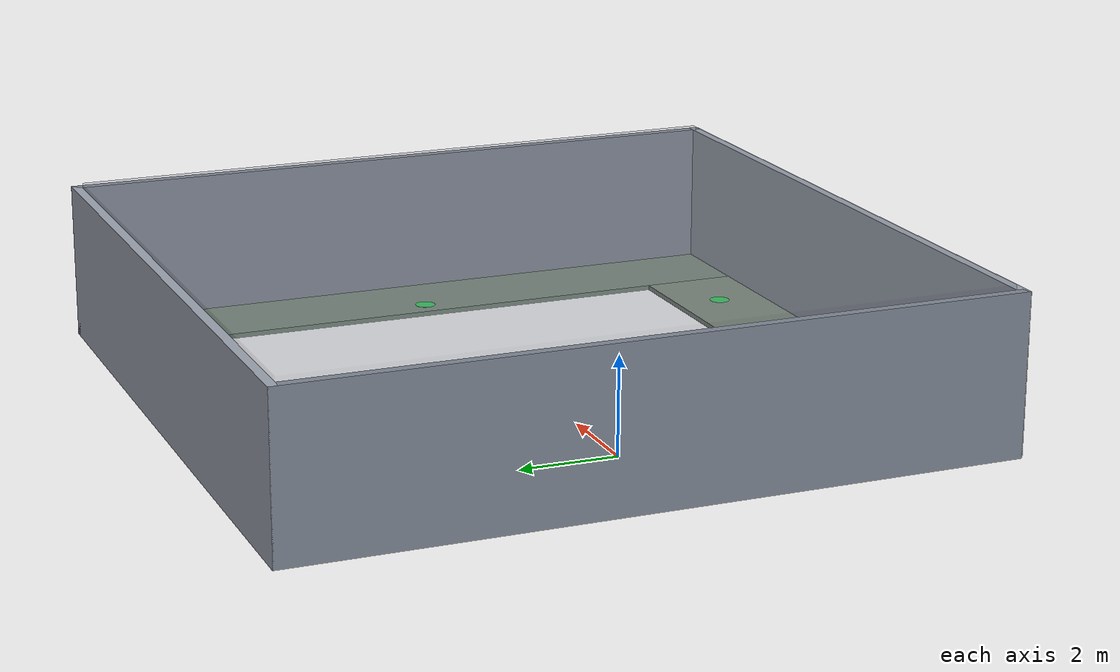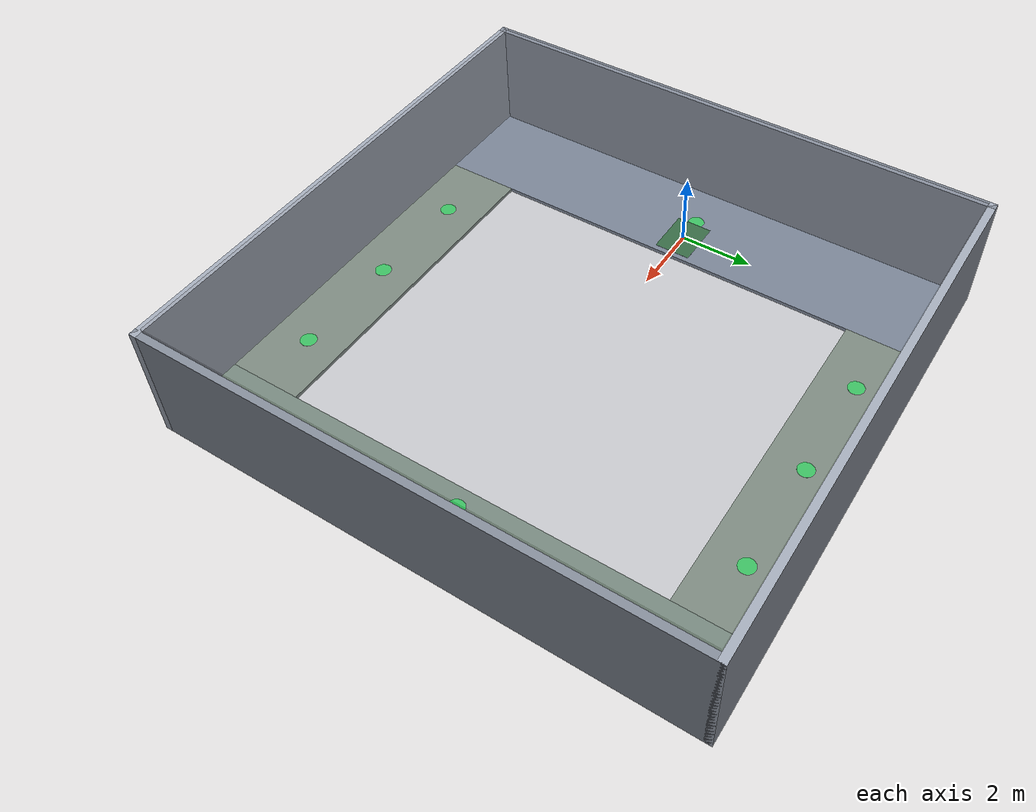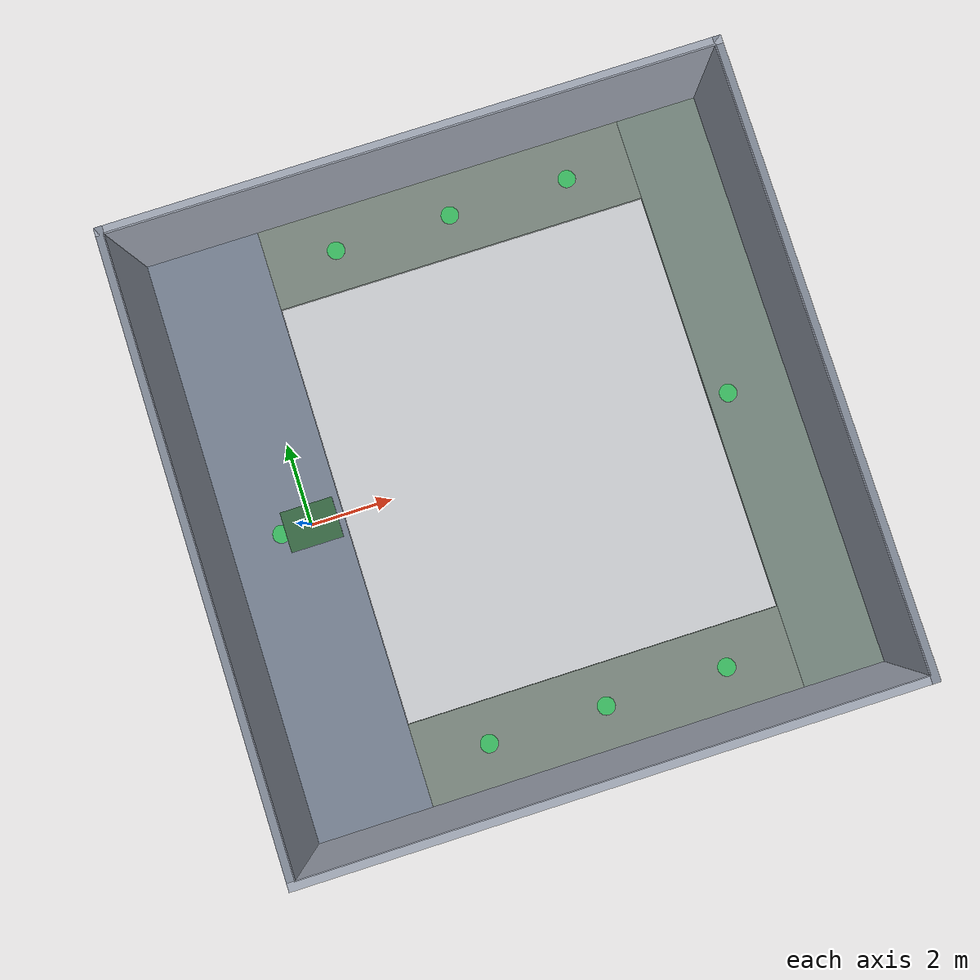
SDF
<sdf version="1.9">
 <world name="combined_rough_section">
  <physics name="2ms_training" type="ignored">
   <max_step_size>0.002</max_step_size>
   <real_time_factor>1.0</real_time_factor>
  </physics>
  <plugin filename="gz-sim-physics-system" name="gz::sim::systems::Physics"/>
  <plugin filename="gz-sim-user-commands-system" name="gz::sim::systems::UserCommands"/>
  <plugin filename="gz-sim-scene-broadcaster-system" name="gz::sim::systems::SceneBroadcaster"/>
  <gravity>0 0 -9.80665</gravity>
  <scene>
   <ambient>0.28 0.28 0.30 1</ambient>
   <background>0.08 0.09 0.12 1</background>
   <shadows>true</shadows>
   <grid>false</grid>
  </scene>
  <light name="lamp_01" type="point">
   <pose>2 0 2.7 0 0 0</pose>
   <cast_shadows>false</cast_shadows>
   <diffuse>0.95 0.92 0.84 1</diffuse>
   <specular>0.15 0.15 0.15 1</specular>
   <attenuation>
    <range>11</range>
    <constant>0.4</constant>
    <linear>0.08</linear>
    <quadratic>0.01</quadratic>
   </attenuation>
  </light>
  <light name="lamp_02" type="point">
   <pose>10 0 2.7 0 0 0</pose>
   <cast_shadows>false</cast_shadows>
   <diffuse>0.95 0.92 0.84 1</diffuse>
   <specular>0.15 0.15 0.15 1</specular>
   <attenuation>
    <range>11</range>
    <constant>0.4</constant>
    <linear>0.08</linear>
    <quadratic>0.01</quadratic>
   </attenuation>
  </light>
  <model name="enclosed_hall">
   <static>true</static>
   <link name="structure">
    <collision name="left_wall_collision">
     <pose>5 7.3 1.35 0 0 0</pose>
     <geometry><box><size>14.4 0.2 3.3</size></box></geometry>
    </collision>
    <visual name="left_wall_visual">
     <pose>5 7.3 1.35 0 0 0</pose>
     <geometry><box><size>14.4 0.2 3.3</size></box></geometry>
     <material><ambient>0.52 0.55 0.60 1</ambient><diffuse>0.62 0.65 0.70 1</diffuse></material>
    </visual>
    <collision name="right_wall_collision">
     <pose>5 -7.3 1.35 0 0 0</pose>
     <geometry><box><size>14.4 0.2 3.3</size></box></geometry>
    </collision>
    <visual name="right_wall_visual">
     <pose>5 -7.3 1.35 0 0 0</pose>
     <geometry><box><size>14.4 0.2 3.3</size></box></geometry>
     <material><ambient>0.52 0.55 0.60 1</ambient><diffuse>0.62 0.65 0.70 1</diffuse></material>
    </visual>
    <collision name="rear_wall_collision">
     <pose>-2.1 0 1.35 0 0 0</pose>
     <geometry><box><size>0.2 14.8 3.3</size></box></geometry>
    </collision>
    <visual name="rear_wall_visual">
     <pose>-2.1 0 1.35 0 0 0</pose>
     <geometry><box><size>0.2 14.8 3.3</size></box></geometry>
     <material><ambient>0.40 0.43 0.48 1</ambient><diffuse>0.50 0.53 0.58 1</diffuse></material>
    </visual>
    <collision name="front_wall_collision">
     <pose>12.1 0 1.35 0 0 0</pose>
     <geometry><box><size>0.2 14.8 3.3</size></box></geometry>
    </collision>
    <visual name="front_wall_visual">
     <pose>12.1 0 1.35 0 0 0</pose>
     <geometry><box><size>0.2 14.8 3.3</size></box></geometry>
     <material><ambient>0.40 0.43 0.48 1</ambient><diffuse>0.50 0.53 0.58 1</diffuse></material>
    </visual>
    <collision name="ceiling_collision">
     <pose>5 0 3.05 0 0 0</pose>
     <geometry><box><size>14 14.4 0.1</size></box></geometry>
    </collision>
    <visual name="ceiling_visual">
     <pose>5 0 3.05 0 0 0</pose>
     <geometry><box><size>14 14.4 0.1</size></box></geometry>
     <transparency>0.70</transparency>
     <cast_shadows>false</cast_shadows>
     <material><ambient>0.45 0.47 0.52 1</ambient><diffuse>0.55 0.57 0.62 1</diffuse></material>
    </visual>
    <collision name="spawn_floor_collision">
     <pose>-0.6 0 -0.05 0 0 0</pose>
     <geometry><box><size>2.8 14.4 0.1</size></box></geometry>
     <surface><friction><ode><mu>1.0</mu><mu2>1.0</mu2></ode></friction></surface>
    </collision>
    <visual name="spawn_floor_visual">
     <pose>-0.6 0 -0.05 0 0 0</pose>
     <geometry><box><size>2.8 14.4 0.1</size></box></geometry>
     <material><ambient>0.43 0.48 0.55 1</ambient><diffuse>0.43 0.48 0.55 1</diffuse></material>
    </visual>
    <collision name="rough_landing_floor_collision">
     <pose>11 0 -0.05 0 0 0</pose>
     <geometry><box><size>2 14.4 0.1</size></box></geometry>
     <surface><friction><ode><mu>1.0</mu><mu2>1.0</mu2></ode></friction></surface>
    </collision>
    <visual name="rough_landing_floor_visual">
     <pose>11 0 -0.05 0 0 0</pose>
     <geometry><box><size>2 14.4 0.1</size></box></geometry>
     <material><ambient>0.42 0.50 0.43 1</ambient><diffuse>0.42 0.50 0.43 1</diffuse></material>
    </visual>
    <collision name="north_goal_hall_collision">
     <pose>5.4 6.2 -0.05 0 0 0</pose>
     <geometry><box><size>9.2 2 0.1</size></box></geometry>
     <surface><friction><ode><mu>1.0</mu><mu2>1.0</mu2></ode></friction></surface>
    </collision>
    <visual name="north_goal_hall_visual">
     <pose>5.4 6.2 -0.05 0 0 0</pose>
     <geometry><box><size>9.2 2 0.1</size></box></geometry>
     <material><ambient>0.45 0.51 0.44 1</ambient><diffuse>0.45 0.51 0.44 1</diffuse></material>
    </visual>
    <collision name="south_goal_hall_collision">
     <pose>5.4 -6.2 -0.05 0 0 0</pose>
     <geometry><box><size>9.2 2 0.1</size></box></geometry>
     <surface><friction><ode><mu>1.0</mu><mu2>1.0</mu2></ode></friction></surface>
    </collision>
    <visual name="south_goal_hall_visual">
     <pose>5.4 -6.2 -0.05 0 0 0</pose>
     <geometry><box><size>9.2 2 0.1</size></box></geometry>
     <material><ambient>0.45 0.51 0.44 1</ambient><diffuse>0.45 0.51 0.44 1</diffuse></material>
    </visual>
   </link>
  </model>
  <model name="spawn_clear_zone">
   <static>true</static>
   <link name="marker">
    <visual name="spawn_pad_visual">
     <pose>0 0 0.001 0 0 0</pose>
     <geometry><box><size>1.30 1.00 0.002</size></box></geometry>
     <material><ambient>0.04 0.20 0.08 1</ambient><diffuse>0.08 0.34 0.12 1</diffuse></material>
    </visual>
   </link>
  </model>
  <model name="rough_goal_markers">
   <static>true</static>
   <link name="floor_markings">
    <visual name="goal_W1">
     <pose>-0.75 0 0.001 0 0 0</pose>
     <geometry><cylinder><radius>0.22</radius><length>0.001</length></cylinder></geometry>
     <material>
      <ambient>0.10 0.80 0.28 1</ambient>
      <diffuse>0.10 0.80 0.28 1</diffuse>
      <emissive>0.10 0.80 0.28 1</emissive>
     </material>
    </visual>
    <visual name="goal_E1">
     <pose>10.5 0 0.001 0 0 0</pose>
     <geometry><cylinder><radius>0.22</radius><length>0.001</length></cylinder></geometry>
     <material>
      <ambient>0.10 0.80 0.28 1</ambient>
      <diffuse>0.10 0.80 0.28 1</diffuse>
      <emissive>0.10 0.80 0.28 1</emissive>
     </material>
    </visual>
    <visual name="goal_N1">
     <pose>2.5 6.2 0.001 0 0 0</pose>
     <geometry><cylinder><radius>0.22</radius><length>0.001</length></cylinder></geometry>
     <material>
      <ambient>0.10 0.80 0.28 1</ambient>
      <diffuse>0.10 0.80 0.28 1</diffuse>
      <emissive>0.10 0.80 0.28 1</emissive>
     </material>
    </visual>
    <visual name="goal_N2">
     <pose>5.4 6.2 0.001 0 0 0</pose>
     <geometry><cylinder><radius>0.22</radius><length>0.001</length></cylinder></geometry>
     <material>
      <ambient>0.10 0.80 0.28 1</ambient>
      <diffuse>0.10 0.80 0.28 1</diffuse>
      <emissive>0.10 0.80 0.28 1</emissive>
     </material>
    </visual>
    <visual name="goal_N3">
     <pose>8.4 6.2 0.001 0 0 0</pose>
     <geometry><cylinder><radius>0.22</radius><length>0.001</length></cylinder></geometry>
     <material>
      <ambient>0.10 0.80 0.28 1</ambient>
      <diffuse>0.10 0.80 0.28 1</diffuse>
      <emissive>0.10 0.80 0.28 1</emissive>
     </material>
    </visual>
    <visual name="goal_S1">
     <pose>2.5 -6.2 0.001 0 0 0</pose>
     <geometry><cylinder><radius>0.22</radius><length>0.001</length></cylinder></geometry>
     <material>
      <ambient>0.10 0.80 0.28 1</ambient>
      <diffuse>0.10 0.80 0.28 1</diffuse>
      <emissive>0.10 0.80 0.28 1</emissive>
     </material>
    </visual>
    <visual name="goal_S2">
     <pose>5.4 -6.2 0.001 0 0 0</pose>
     <geometry><cylinder><radius>0.22</radius><length>0.001</length></cylinder></geometry>
     <material>
      <ambient>0.10 0.80 0.28 1</ambient>
      <diffuse>0.10 0.80 0.28 1</diffuse>
      <emissive>0.10 0.80 0.28 1</emissive>
     </material>
    </visual>
    <visual name="goal_S3">
     <pose>8.4 -6.2 0.001 0 0 0</pose>
     <geometry><cylinder><radius>0.22</radius><length>0.001</length></cylinder></geometry>
     <material>
      <ambient>0.10 0.80 0.28 1</ambient>
      <diffuse>0.10 0.80 0.28 1</diffuse>
      <emissive>0.10 0.80 0.28 1</emissive>
     </material>
    </visual>
   </link>
  </model>
  <light name="goal_hall_lamp_north" type="point">
   <pose>5.4 5.8 2.7 0 0 0</pose>
   <cast_shadows>false</cast_shadows>
   <diffuse>0.95 0.92 0.84 1</diffuse>
   <specular>0.15 0.15 0.15 1</specular>
   <attenuation>
    <range>11</range>
    <constant>0.4</constant>
    <linear>0.08</linear>
    <quadratic>0.01</quadratic>
   </attenuation>
  </light>
  <light name="goal_hall_lamp_south" type="point">
   <pose>5.4 -5.8 2.7 0 0 0</pose>
   <cast_shadows>false</cast_shadows>
   <diffuse>0.95 0.92 0.84 1</diffuse>
   <specular>0.15 0.15 0.15 1</specular>
   <attenuation>
    <range>11</range>
    <constant>0.4</constant>
    <linear>0.08</linear>
    <quadratic>0.01</quadratic>
   </attenuation>
  </light>
 </world>
</sdf>
